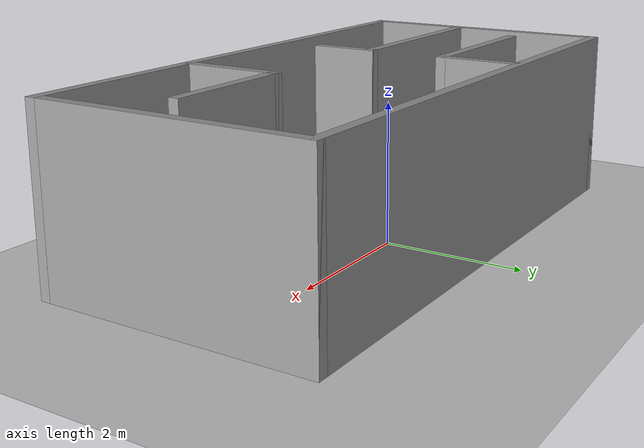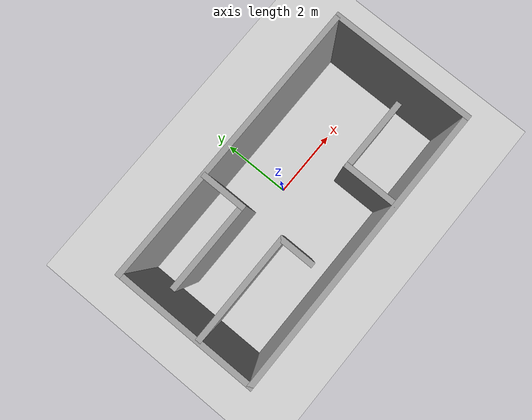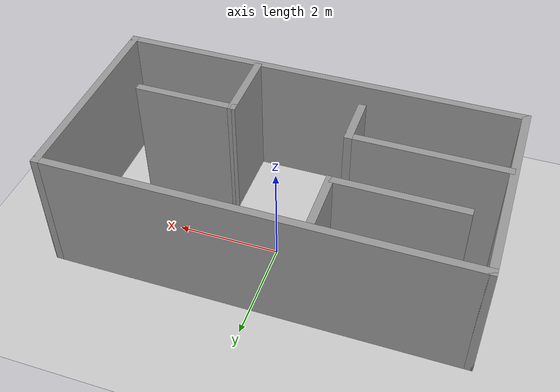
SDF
<sdf version="1.7">
 <world name="default">
  <light name="sun" type="directional">
   <pose>0 0 10 0 -0 0</pose>
   <diffuse>0.8 0.8 0.8 1</diffuse>
   <specular>0.2 0.2 0.2 1</specular>
   <attenuation>
    <range>1000</range>
    <constant>0.9</constant>
    <linear>0.01</linear>
    <quadratic>0.001</quadratic>
   </attenuation>
   <direction>-0.5 0.1 -0.9</direction>
   <spot><inner_angle>0</inner_angle><outer_angle>0</outer_angle><falloff>0</falloff></spot>
  </light>
  <model name="ground_plane">
   <static>1</static>
   <link name="link">
    <collision name="collision">
     <geometry><plane><normal>0 0 1</normal><size>100 100</size></plane></geometry>
     <surface>
      <contact><collide_bitmask>65535</collide_bitmask></contact>
      <friction><ode><mu>100</mu><mu2>50</mu2></ode></friction>
     </surface>
    </collision>
    <visual name="visual">
     <cast_shadows>0</cast_shadows>
     <geometry><plane><normal>0 0 1</normal><size>100 100</size></plane></geometry>
     <material>
      <script><uri>file://media/materials/scripts/gazebo.material</uri><name>Gazebo/Grey</name></script>
     </material>
    </visual>
   </link>
  </model>
  <gravity>0 0 -9.8</gravity>
  <magnetic_field>6e-06 2.3e-05 -4.2e-05</magnetic_field>
  <atmosphere type="adiabatic"/>
  <physics type="ode">
   <max_step_size>0.001</max_step_size>
   <real_time_factor>1</real_time_factor>
   <real_time_update_rate>1000</real_time_update_rate>
  </physics>
  <scene><ambient>0.4 0.4 0.4 1</ambient><background>0.7 0.7 0.7 1</background><shadows>1</shadows></scene>
  <audio><device>default</device></audio>
  <spherical_coordinates>
   <surface_model>EARTH_WGS84</surface_model>
   <latitude_deg>0</latitude_deg>
   <longitude_deg>0</longitude_deg>
   <elevation>0</elevation>
   <heading_deg>0</heading_deg>
  </spherical_coordinates>
  <model name="room">
   <pose>-0.05169 0.107061 0 0 -0 0</pose>
   <link name="Wall_10">
    <collision name="Wall_10_Collision">
     <geometry><box><size>3 0.15 2.5</size></box></geometry>
     <pose>0 0 1.25 0 -0 0</pose>
    </collision>
    <visual name="Wall_10_Visual">
     <pose>0 0 1.25 0 -0 0</pose>
     <geometry><box><size>3 0.15 2.5</size></box></geometry>
     <material>
      <script><uri>file://media/materials/scripts/gazebo.material</uri><name>Gazebo/Grey</name></script>
      <ambient>1 1 1 1</ambient>
     </material>
     <meta><layer>0</layer></meta>
    </visual>
    <pose>-2.43 -1.0225 0 0 -0 0</pose>
   </link>
   <link name="Wall_11">
    <collision name="Wall_11_Collision">
     <geometry><box><size>1 0.15 2.5</size></box></geometry>
     <pose>0 0 1.25 0 -0 0</pose>
    </collision>
    <visual name="Wall_11_Visual">
     <pose>0 0 1.25 0 -0 0</pose>
     <geometry><box><size>1 0.15 2.5</size></box></geometry>
     <material>
      <script><uri>file://media/materials/scripts/gazebo.material</uri><name>Gazebo/Grey</name></script>
      <ambient>1 1 1 1</ambient>
     </material>
     <meta><layer>0</layer></meta>
    </visual>
    <pose>-1.005 -1.4475 0 0 -0 -1.5708</pose>
   </link>
   <link name="Wall_13">
    <collision name="Wall_13_Collision">
     <geometry><box><size>1.5 0.15 2.5</size></box></geometry>
     <pose>0 0 1.25 0 -0 0</pose>
    </collision>
    <visual name="Wall_13_Visual">
     <pose>0 0 1.25 0 -0 0</pose>
     <geometry><box><size>1.5 0.15 2.5</size></box></geometry>
     <material>
      <script><uri>file://media/materials/scripts/gazebo.material</uri><name>Gazebo/Grey</name></script>
      <ambient>1 1 1 1</ambient>
     </material>
     <meta><layer>0</layer></meta>
    </visual>
    <pose>1.255 -1.7975 0 0 -0 1.5708</pose>
   </link>
   <link name="Wall_14">
    <collision name="Wall_14_Collision">
     <geometry><box><size>2 0.15 2.5</size></box></geometry>
     <pose>0 0 1.25 0 -0 0</pose>
    </collision>
    <visual name="Wall_14_Visual">
     <pose>0 0 1.25 0 -0 0</pose>
     <geometry><box><size>2 0.15 2.5</size></box></geometry>
     <material>
      <script><uri>file://media/materials/scripts/gazebo.material</uri><name>Gazebo/Grey</name></script>
      <ambient>1 1 1 1</ambient>
     </material>
     <meta><layer>0</layer></meta>
    </visual>
    <pose>2.18 -1.1225 0 0 -0 0</pose>
   </link>
   <link name="Wall_2">
    <collision name="Wall_2_Collision">
     <geometry><box><size>8 0.15 2.5</size></box></geometry>
     <pose>0 0 1.25 0 -0 0</pose>
    </collision>
    <visual name="Wall_2_Visual">
     <pose>0 0 1.25 0 -0 0</pose>
     <geometry><box><size>8 0.15 2.5</size></box></geometry>
     <material>
      <script><uri>file://media/materials/scripts/gazebo.material</uri><name>Gazebo/Grey</name></script>
      <ambient>1 1 1 1</ambient>
     </material>
     <meta><layer>0</layer></meta>
    </visual>
    <pose>0 1.3075 0 0 -0 0</pose>
   </link>
   <link name="Wall_3">
    <collision name="Wall_3_Collision">
     <geometry><box><size>4 0.15 2.5</size></box></geometry>
     <pose>0 0 1.25 0 -0 0</pose>
    </collision>
    <visual name="Wall_3_Visual">
     <pose>0 0 1.25 0 -0 0</pose>
     <geometry><box><size>4 0.15 2.5</size></box></geometry>
     <material>
      <script><uri>file://media/materials/scripts/gazebo.material</uri><name>Gazebo/Grey</name></script>
      <ambient>1 1 1 1</ambient>
     </material>
     <meta><layer>0</layer></meta>
    </visual>
    <pose>3.925 -0.6175 0 0 -0 -1.5708</pose>
   </link>
   <link name="Wall_4">
    <collision name="Wall_4_Collision">
     <geometry><box><size>8 0.15 2.5</size></box></geometry>
     <pose>0 0 1.25 0 -0 0</pose>
    </collision>
    <visual name="Wall_4_Visual">
     <pose>0 0 1.25 0 -0 0</pose>
     <geometry><box><size>8 0.15 2.5</size></box></geometry>
     <material>
      <script><uri>file://media/materials/scripts/gazebo.material</uri><name>Gazebo/Grey</name></script>
      <ambient>1 1 1 1</ambient>
     </material>
     <meta><layer>0</layer></meta>
    </visual>
    <pose>0 -2.5425 0 0 -0 3.14159</pose>
   </link>
   <link name="Wall_5">
    <collision name="Wall_5_Collision">
     <geometry><box><size>4 0.15 2.5</size></box></geometry>
     <pose>0 0 1.25 0 -0 0</pose>
    </collision>
    <visual name="Wall_5_Visual">
     <pose>0 0 1.25 0 -0 0</pose>
     <geometry><box><size>4 0.15 2.5</size></box></geometry>
     <material>
      <script><uri>file://media/materials/scripts/gazebo.material</uri><name>Gazebo/Grey</name></script>
      <ambient>1 1 1 1</ambient>
     </material>
     <meta><layer>0</layer></meta>
    </visual>
    <pose>-3.925 -0.6175 0 0 -0 1.5708</pose>
   </link>
   <link name="Wall_7">
    <collision name="Wall_7_Collision">
     <geometry><box><size>1.25 0.15 2.5</size></box></geometry>
     <pose>0 0 1.25 0 -0 0</pose>
    </collision>
    <visual name="Wall_7_Visual">
     <pose>0 0 1.25 0 -0 0</pose>
     <geometry><box><size>1.25 0.15 2.5</size></box></geometry>
     <material>
      <script><uri>file://media/materials/scripts/gazebo.material</uri><name>Gazebo/Grey</name></script>
      <ambient>1 1 1 1</ambient>
     </material>
     <meta><layer>0</layer></meta>
    </visual>
    <pose>-1.005 0.7075 0 0 -0 -1.5708</pose>
   </link>
   <link name="Wall_8">
    <collision name="Wall_8_Collision">
     <geometry><box><size>2.5 0.15 2.5</size></box></geometry>
     <pose>0 0 1.25 0 -0 0</pose>
    </collision>
    <visual name="Wall_8_Visual">
     <pose>0 0 1.25 0 -0 0</pose>
     <geometry><box><size>2.5 0.15 2.5</size></box></geometry>
     <material>
      <script><uri>file://media/materials/scripts/gazebo.material</uri><name>Gazebo/Grey</name></script>
      <ambient>1 1 1 1</ambient>
     </material>
     <meta><layer>0</layer></meta>
    </visual>
    <pose>-2.18 0.1575 0 0 -0 3.14159</pose>
   </link>
   <static>1</static>
  </model>
 </world>
</sdf>
